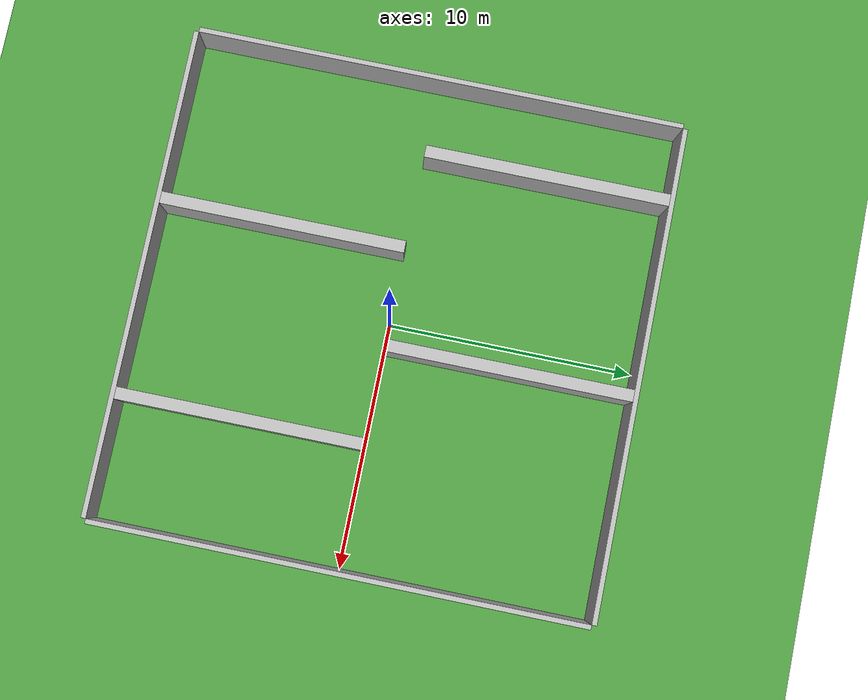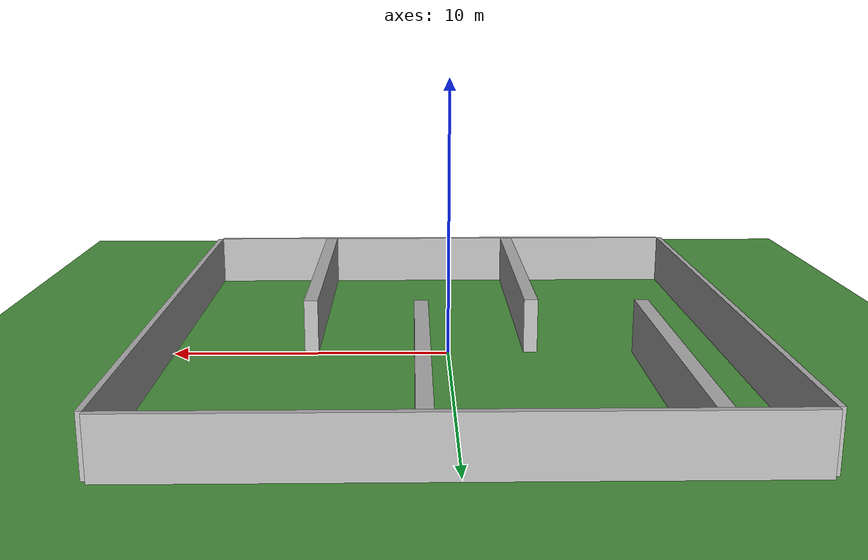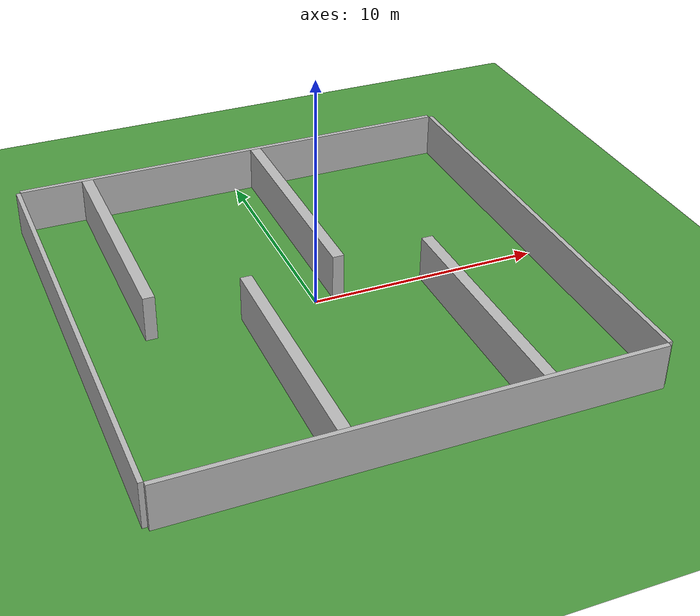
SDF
<sdf version="1.7">
 <world name="narrow_passages_world">
  <physics type="ode">
   <real_time_update_rate>1000</real_time_update_rate>
   <max_step_size>0.001</max_step_size>
   <real_time_factor>1</real_time_factor>
   <gravity>0 0 -9.81</gravity>
  </physics>
  <model name="ground_plane">
   <static>1</static>
   <link name="ground_link">
    <collision name="collision">
     <geometry><plane><normal>0 0 1</normal><size>20 20</size></plane></geometry>
    </collision>
    <visual name="visual">
     <geometry><plane><normal>0 0 1</normal><size>20 20</size></plane></geometry>
     <material>
      <script><uri>file://media/materials/scripts/gazebo.material</uri><name>Gazebo/Grass</name></script>
     </material>
    </visual>
   </link>
  </model>
  <model name="wall_north">
   <static>1</static>
   <pose>0 10.1 1 0 -0 0</pose>
   <link name="link">
    <collision name="collision"><geometry><box><size>20 0.2 2</size></box></geometry></collision>
    <visual name="visual"><geometry><box><size>20 0.2 2</size></box></geometry></visual>
   </link>
  </model>
  <model name="wall_south">
   <static>1</static>
   <pose>0 -10.1 1 0 -0 0</pose>
   <link name="link">
    <collision name="collision"><geometry><box><size>20 0.2 2</size></box></geometry></collision>
    <visual name="visual"><geometry><box><size>20 0.2 2</size></box></geometry></visual>
   </link>
  </model>
  <model name="wall_east">
   <static>1</static>
   <pose>10.1 0 1 0 -0 0</pose>
   <link name="link">
    <collision name="collision"><geometry><box><size>0.2 20 2</size></box></geometry></collision>
    <visual name="visual"><geometry><box><size>0.2 20 2</size></box></geometry></visual>
   </link>
  </model>
  <model name="wall_west">
   <static>1</static>
   <pose>-10.1 0 1 0 -0 0</pose>
   <link name="link">
    <collision name="collision"><geometry><box><size>0.2 20 2</size></box></geometry></collision>
    <visual name="visual"><geometry><box><size>0.2 20 2</size></box></geometry></visual>
   </link>
  </model>
  <model name="column_-7_top">
   <static>1</static>
   <pose>-7 5 1 0 -0 0</pose>
   <link name="link">
    <collision name="collision"><geometry><box><size>0.5 10 2</size></box></geometry></collision>
    <visual name="visual"><geometry><box><size>0.5 10 2</size></box></geometry></visual>
   </link>
  </model>
  <model name="column_-3_bottom">
   <static>1</static>
   <pose>-3 -5 1 0 -0 0</pose>
   <link name="link">
    <collision name="collision"><geometry><box><size>0.5 10 2</size></box></geometry></collision>
    <visual name="visual"><geometry><box><size>0.5 10 2</size></box></geometry></visual>
   </link>
  </model>
  <model name="column_1_top">
   <static>1</static>
   <pose>1 5 1 0 -0 0</pose>
   <link name="link">
    <collision name="collision"><geometry><box><size>0.5 10 2</size></box></geometry></collision>
    <visual name="visual"><geometry><box><size>0.5 10 2</size></box></geometry></visual>
   </link>
  </model>
  <model name="column_5_bottom">
   <static>1</static>
   <pose>5 -5 1 0 -0 0</pose>
   <link name="link">
    <collision name="collision"><geometry><box><size>0.5 10 2</size></box></geometry></collision>
    <visual name="visual"><geometry><box><size>0.5 10 2</size></box></geometry></visual>
   </link>
  </model>
  <light name="sun" type="directional">
   <pose>0 0 10 0 -0 0</pose>
   <diffuse>0.8 0.8 0.8 1</diffuse>
   <specular>0.2 0.2 0.2 1</specular>
   <attenuation>
    <range>1000</range>
    <constant>0.9</constant>
    <linear>0.01</linear>
    <quadratic>0.001</quadratic>
   </attenuation>
   <direction>-0.5 0.1 -0.9</direction>
   <spot><inner_angle>0</inner_angle><outer_angle>0</outer_angle><falloff>0</falloff></spot>
  </light>
  <gravity>0 0 -9.8</gravity>
  <magnetic_field>6e-06 2.3e-05 -4.2e-05</magnetic_field>
  <atmosphere type="adiabatic"/>
  <scene><ambient>0.4 0.4 0.4 1</ambient><background>0.7 0.7 0.7 1</background><shadows>1</shadows></scene>
  <spherical_coordinates>
   <surface_model>EARTH_WGS84</surface_model>
   <latitude_deg>0</latitude_deg>
   <longitude_deg>0</longitude_deg>
   <elevation>0</elevation>
   <heading_deg>0</heading_deg>
  </spherical_coordinates>
 </world>
</sdf>
